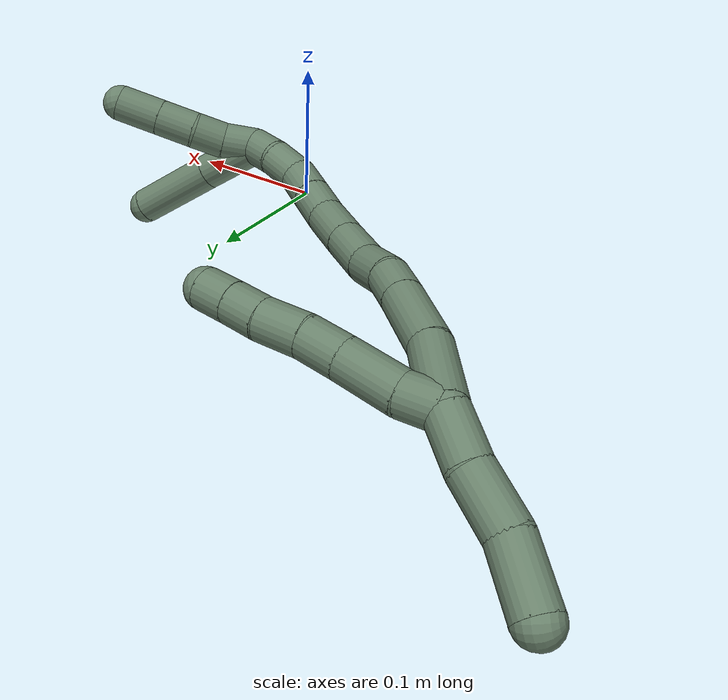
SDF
<sdf version="1.7">
 <world name="default">
  <model name="17">
   <static>0</static>
   <link name="17">
    <collision name="collision-cylinder-e_1_2_8">
     <pose>0.003162 -0.003744 0.01007 0.355961 0.286237 0.051832</pose>
     <geometry><cylinder><radius>0.0125</radius><length>0.022398</length></cylinder></geometry>
     <surface>
      <friction><ode><mu>1.16</mu><mu2>1.16</mu2><slip1>0</slip1><slip2>0</slip2></ode></friction>
      <contact><ode><kp>1e+06</kp><kd>1</kd><max_vel>0</max_vel><min_depth>0.001</min_depth></ode></contact>
     </surface>
    </collision>
    <visual name="visual-cylinder-e_1_2_8">
     <pose>0.003162 -0.003744 0.01007 0.355961 0.286237 0.051832</pose>
     <geometry><cylinder><radius>0.0125</radius><length>0.022398</length></cylinder></geometry>
     <material><ambient>0.415686 0.509804 0.423529 1</ambient></material>
    </visual>
    <collision name="collision-cylinder-e_2_8_9">
     <pose>0.012915 -0.015889 0.034417 0.531871 0.378681 0.104304</pose>
     <geometry><cylinder><radius>0.0125</radius><length>0.035657</length></cylinder></geometry>
     <surface>
      <friction><ode><mu>1.16</mu><mu2>1.16</mu2><slip1>0</slip1><slip2>0</slip2></ode></friction>
      <contact><ode><kp>1e+06</kp><kd>1</kd><max_vel>0</max_vel><min_depth>0.001</min_depth></ode></contact>
     </surface>
    </collision>
    <visual name="visual-cylinder-e_2_8_9">
     <pose>0.012915 -0.015889 0.034417 0.531871 0.378681 0.104304</pose>
     <geometry><cylinder><radius>0.0125</radius><length>0.035657</length></cylinder></geometry>
     <material><ambient>0.415686 0.509804 0.423529 1</ambient></material>
    </visual>
    <collision name="collision-cylinder-e_3_9_10">
     <pose>0.023349 -0.030122 0.05838 0.541967 0.327662 0.091789</pose>
     <geometry><cylinder><radius>0.0125</radius><length>0.023883</length></cylinder></geometry>
     <surface>
      <friction><ode><mu>1.16</mu><mu2>1.16</mu2><slip1>0</slip1><slip2>0</slip2></ode></friction>
      <contact><ode><kp>1e+06</kp><kd>1</kd><max_vel>0</max_vel><min_depth>0.001</min_depth></ode></contact>
     </surface>
    </collision>
    <visual name="visual-cylinder-e_3_9_10">
     <pose>0.023349 -0.030122 0.05838 0.541967 0.327662 0.091789</pose>
     <geometry><cylinder><radius>0.0125</radius><length>0.023883</length></cylinder></geometry>
     <material><ambient>0.415686 0.509804 0.423529 1</ambient></material>
    </visual>
    <collision name="collision-cylinder-e_4_10_11">
     <pose>0.030823 -0.041219 0.079731 0.423927 0.276438 0.059852</pose>
     <geometry><cylinder><radius>0.0125</radius><length>0.026605</length></cylinder></geometry>
     <surface>
      <friction><ode><mu>1.16</mu><mu2>1.16</mu2><slip1>0</slip1><slip2>0</slip2></ode></friction>
      <contact><ode><kp>1e+06</kp><kd>1</kd><max_vel>0</max_vel><min_depth>0.001</min_depth></ode></contact>
     </surface>
    </collision>
    <visual name="visual-cylinder-e_4_10_11">
     <pose>0.030823 -0.041219 0.079731 0.423927 0.276438 0.059852</pose>
     <geometry><cylinder><radius>0.0125</radius><length>0.026605</length></cylinder></geometry>
     <material><ambient>0.415686 0.509804 0.423529 1</ambient></material>
    </visual>
    <collision name="collision-cylinder-e_5_11_12">
     <pose>0.03829 -0.051022 0.100086 0.481366 0.372932 0.092542</pose>
     <geometry><cylinder><radius>0.0125</radius><length>0.021056</length></cylinder></geometry>
     <surface>
      <friction><ode><mu>1.16</mu><mu2>1.16</mu2><slip1>0</slip1><slip2>0</slip2></ode></friction>
      <contact><ode><kp>1e+06</kp><kd>1</kd><max_vel>0</max_vel><min_depth>0.001</min_depth></ode></contact>
     </surface>
    </collision>
    <visual name="visual-cylinder-e_5_11_12">
     <pose>0.03829 -0.051022 0.100086 0.481366 0.372932 0.092542</pose>
     <geometry><cylinder><radius>0.0125</radius><length>0.021056</length></cylinder></geometry>
     <material><ambient>0.415686 0.509804 0.423529 1</ambient></material>
    </visual>
    <collision name="collision-cylinder-e_6_12_6">
     <pose>0.04586 -0.059686 0.117325 0.449459 0.37478 0.086634</pose>
     <geometry><cylinder><radius>0.0125</radius><length>0.0204</length></cylinder></geometry>
     <surface>
      <friction><ode><mu>1.16</mu><mu2>1.16</mu2><slip1>0</slip1><slip2>0</slip2></ode></friction>
      <contact><ode><kp>1e+06</kp><kd>1</kd><max_vel>0</max_vel><min_depth>0.001</min_depth></ode></contact>
     </surface>
    </collision>
    <visual name="visual-cylinder-e_6_12_6">
     <pose>0.04586 -0.059686 0.117325 0.449459 0.37478 0.086634</pose>
     <geometry><cylinder><radius>0.0125</radius><length>0.0204</length></cylinder></geometry>
     <material><ambient>0.415686 0.509804 0.423529 1</ambient></material>
    </visual>
    <collision name="collision-cylinder-e_1_2_13">
     <pose>-0.010462 0.009711 -0.004809 -2.03064 -0.7678 1.15391</pose>
     <geometry><cylinder><radius>0.0125</radius><length>0.030125</length></cylinder></geometry>
     <surface>
      <friction><ode><mu>1.16</mu><mu2>1.16</mu2><slip1>0</slip1><slip2>0</slip2></ode></friction>
      <contact><ode><kp>1e+06</kp><kd>1</kd><max_vel>0</max_vel><min_depth>0.001</min_depth></ode></contact>
     </surface>
    </collision>
    <visual name="visual-cylinder-e_1_2_13">
     <pose>-0.010462 0.009711 -0.004809 -2.03064 -0.7678 1.15391</pose>
     <geometry><cylinder><radius>0.0125</radius><length>0.030125</length></cylinder></geometry>
     <material><ambient>0.415686 0.509804 0.423529 1</ambient></material>
    </visual>
    <collision name="collision-cylinder-e_2_13_14">
     <pose>-0.030864 0.030684 -0.016919 -2.14593 -0.637488 1.09137</pose>
     <geometry><cylinder><radius>0.0125</radius><length>0.033403</length></cylinder></geometry>
     <surface>
      <friction><ode><mu>1.16</mu><mu2>1.16</mu2><slip1>0</slip1><slip2>0</slip2></ode></friction>
      <contact><ode><kp>1e+06</kp><kd>1</kd><max_vel>0</max_vel><min_depth>0.001</min_depth></ode></contact>
     </surface>
    </collision>
    <visual name="visual-cylinder-e_2_13_14">
     <pose>-0.030864 0.030684 -0.016919 -2.14593 -0.637488 1.09137</pose>
     <geometry><cylinder><radius>0.0125</radius><length>0.033403</length></cylinder></geometry>
     <material><ambient>0.415686 0.509804 0.423529 1</ambient></material>
    </visual>
    <collision name="collision-cylinder-e_3_14_5">
     <pose>-0.054253 0.0534 -0.028746 -1.94711 -0.829348 1.1489</pose>
     <geometry><cylinder><radius>0.0125</radius><length>0.036472</length></cylinder></geometry>
     <surface>
      <friction><ode><mu>1.16</mu><mu2>1.16</mu2><slip1>0</slip1><slip2>0</slip2></ode></friction>
      <contact><ode><kp>1e+06</kp><kd>1</kd><max_vel>0</max_vel><min_depth>0.001</min_depth></ode></contact>
     </surface>
    </collision>
    <visual name="visual-cylinder-e_3_14_5">
     <pose>-0.054253 0.0534 -0.028746 -1.94711 -0.829348 1.1489</pose>
     <geometry><cylinder><radius>0.0125</radius><length>0.036472</length></cylinder></geometry>
     <material><ambient>0.415686 0.509804 0.423529 1</ambient></material>
    </visual>
    <collision name="collision-cylinder-e_1_2_15">
     <pose>0.021516 -0.006187 0.005906 0.8086 1.19243 0.565165</pose>
     <geometry><cylinder><radius>0.0125</radius><length>0.046308</length></cylinder></geometry>
     <surface>
      <friction><ode><mu>1.16</mu><mu2>1.16</mu2><slip1>0</slip1><slip2>0</slip2></ode></friction>
      <contact><ode><kp>1e+06</kp><kd>1</kd><max_vel>0</max_vel><min_depth>0.001</min_depth></ode></contact>
     </surface>
    </collision>
    <visual name="visual-cylinder-e_1_2_15">
     <pose>0.021516 -0.006187 0.005906 0.8086 1.19243 0.565165</pose>
     <geometry><cylinder><radius>0.0125</radius><length>0.046308</length></cylinder></geometry>
     <material><ambient>0.415686 0.509804 0.423529 1</ambient></material>
    </visual>
    <collision name="collision-cylinder-e_2_15_16">
     <pose>0.061865 -0.01868 0.021445 0.579667 1.02206 0.331379</pose>
     <geometry><cylinder><radius>0.0125</radius><length>0.044145</length></cylinder></geometry>
     <surface>
      <friction><ode><mu>1.16</mu><mu2>1.16</mu2><slip1>0</slip1><slip2>0</slip2></ode></friction>
      <contact><ode><kp>1e+06</kp><kd>1</kd><max_vel>0</max_vel><min_depth>0.001</min_depth></ode></contact>
     </surface>
    </collision>
    <visual name="visual-cylinder-e_2_15_16">
     <pose>0.061865 -0.01868 0.021445 0.579667 1.02206 0.331379</pose>
     <geometry><cylinder><radius>0.0125</radius><length>0.044145</length></cylinder></geometry>
     <material><ambient>0.415686 0.509804 0.423529 1</ambient></material>
    </visual>
    <collision name="collision-cylinder-e_3_16_17">
     <pose>0.09034 -0.028208 0.036407 0.543713 0.997359 0.301316</pose>
     <geometry><cylinder><radius>0.0125</radius><length>0.022958</length></cylinder></geometry>
     <surface>
      <friction><ode><mu>1.16</mu><mu2>1.16</mu2><slip1>0</slip1><slip2>0</slip2></ode></friction>
      <contact><ode><kp>1e+06</kp><kd>1</kd><max_vel>0</max_vel><min_depth>0.001</min_depth></ode></contact>
     </surface>
    </collision>
    <visual name="visual-cylinder-e_3_16_17">
     <pose>0.09034 -0.028208 0.036407 0.543713 0.997359 0.301316</pose>
     <geometry><cylinder><radius>0.0125</radius><length>0.022958</length></cylinder></geometry>
     <material><ambient>0.415686 0.509804 0.423529 1</ambient></material>
    </visual>
    <collision name="collision-cylinder-e_4_17_18">
     <pose>0.110642 -0.032581 0.050569 0.129655 0.874656 0.060683</pose>
     <geometry><cylinder><radius>0.0125</radius><length>0.027782</length></cylinder></geometry>
     <surface>
      <friction><ode><mu>1.16</mu><mu2>1.16</mu2><slip1>0</slip1><slip2>0</slip2></ode></friction>
      <contact><ode><kp>1e+06</kp><kd>1</kd><max_vel>0</max_vel><min_depth>0.001</min_depth></ode></contact>
     </surface>
    </collision>
    <visual name="visual-cylinder-e_4_17_18">
     <pose>0.110642 -0.032581 0.050569 0.129655 0.874656 0.060683</pose>
     <geometry><cylinder><radius>0.0125</radius><length>0.027782</length></cylinder></geometry>
     <material><ambient>0.415686 0.509804 0.423529 1</ambient></material>
    </visual>
    <collision name="collision-cylinder-e_5_18_19">
     <pose>0.133431 -0.0382 0.06802 0.478212 0.895908 0.233216</pose>
     <geometry><cylinder><radius>0.0125</radius><length>0.031072</length></cylinder></geometry>
     <surface>
      <friction><ode><mu>1.16</mu><mu2>1.16</mu2><slip1>0</slip1><slip2>0</slip2></ode></friction>
      <contact><ode><kp>1e+06</kp><kd>1</kd><max_vel>0</max_vel><min_depth>0.001</min_depth></ode></contact>
     </surface>
    </collision>
    <visual name="visual-cylinder-e_5_18_19">
     <pose>0.133431 -0.0382 0.06802 0.478212 0.895908 0.233216</pose>
     <geometry><cylinder><radius>0.0125</radius><length>0.031072</length></cylinder></geometry>
     <material><ambient>0.415686 0.509804 0.423529 1</ambient></material>
    </visual>
    <collision name="collision-cylinder-e_6_19_20">
     <pose>0.158259 -0.047651 0.085432 0.515646 0.898479 0.252904</pose>
     <geometry><cylinder><radius>0.0125</radius><length>0.03246</length></cylinder></geometry>
     <surface>
      <friction><ode><mu>1.16</mu><mu2>1.16</mu2><slip1>0</slip1><slip2>0</slip2></ode></friction>
      <contact><ode><kp>1e+06</kp><kd>1</kd><max_vel>0</max_vel><min_depth>0.001</min_depth></ode></contact>
     </surface>
    </collision>
    <visual name="visual-cylinder-e_6_19_20">
     <pose>0.158259 -0.047651 0.085432 0.515646 0.898479 0.252904</pose>
     <geometry><cylinder><radius>0.0125</radius><length>0.03246</length></cylinder></geometry>
     <material><ambient>0.415686 0.509804 0.423529 1</ambient></material>
    </visual>
    <collision name="collision-cylinder-e_7_20_21">
     <pose>0.179433 -0.058207 0.100141 0.755487 0.806521 0.335401</pose>
     <geometry><cylinder><radius>0.0125</radius><length>0.023484</length></cylinder></geometry>
     <surface>
      <friction><ode><mu>1.16</mu><mu2>1.16</mu2><slip1>0</slip1><slip2>0</slip2></ode></friction>
      <contact><ode><kp>1e+06</kp><kd>1</kd><max_vel>0</max_vel><min_depth>0.001</min_depth></ode></contact>
     </surface>
    </collision>
    <visual name="visual-cylinder-e_7_20_21">
     <pose>0.179433 -0.058207 0.100141 0.755487 0.806521 0.335401</pose>
     <geometry><cylinder><radius>0.0125</radius><length>0.023484</length></cylinder></geometry>
     <material><ambient>0.415686 0.509804 0.423529 1</ambient></material>
    </visual>
    <collision name="collision-cylinder-e_8_21_22">
     <pose>0.196701 -0.069224 0.112145 0.729749 0.822046 0.329943</pose>
     <geometry><cylinder><radius>0.0125</radius><length>0.024002</length></cylinder></geometry>
     <surface>
      <friction><ode><mu>1.16</mu><mu2>1.16</mu2><slip1>0</slip1><slip2>0</slip2></ode></friction>
      <contact><ode><kp>1e+06</kp><kd>1</kd><max_vel>0</max_vel><min_depth>0.001</min_depth></ode></contact>
     </surface>
    </collision>
    <visual name="visual-cylinder-e_8_21_22">
     <pose>0.196701 -0.069224 0.112145 0.729749 0.822046 0.329943</pose>
     <geometry><cylinder><radius>0.0125</radius><length>0.024002</length></cylinder></geometry>
     <material><ambient>0.415686 0.509804 0.423529 1</ambient></material>
    </visual>
    <collision name="collision-cylinder-e_9_22_23">
     <pose>0.211006 -0.081403 0.126421 0.688189 0.479675 0.174819</pose>
     <geometry><cylinder><radius>0.0125</radius><length>0.023897</length></cylinder></geometry>
     <surface>
      <friction><ode><mu>1.16</mu><mu2>1.16</mu2><slip1>0</slip1><slip2>0</slip2></ode></friction>
      <contact><ode><kp>1e+06</kp><kd>1</kd><max_vel>0</max_vel><min_depth>0.001</min_depth></ode></contact>
     </surface>
    </collision>
    <visual name="visual-cylinder-e_9_22_23">
     <pose>0.211006 -0.081403 0.126421 0.688189 0.479675 0.174819</pose>
     <geometry><cylinder><radius>0.0125</radius><length>0.023897</length></cylinder></geometry>
     <material><ambient>0.415686 0.509804 0.423529 1</ambient></material>
    </visual>
    <collision name="collision-cylinder-e_10_23_1">
     <pose>0.223295 -0.092559 0.143397 0.46631 0.602981 0.147427</pose>
     <geometry><cylinder><radius>0.0125</radius><length>0.023891</length></cylinder></geometry>
     <surface>
      <friction><ode><mu>1.16</mu><mu2>1.16</mu2><slip1>0</slip1><slip2>0</slip2></ode></friction>
      <contact><ode><kp>1e+06</kp><kd>1</kd><max_vel>0</max_vel><min_depth>0.001</min_depth></ode></contact>
     </surface>
    </collision>
    <visual name="visual-cylinder-e_10_23_1">
     <pose>0.223295 -0.092559 0.143397 0.46631 0.602981 0.147427</pose>
     <geometry><cylinder><radius>0.0125</radius><length>0.023891</length></cylinder></geometry>
     <material><ambient>0.415686 0.509804 0.423529 1</ambient></material>
    </visual>
    <collision name="collision-cylinder-e_1_1_24">
     <pose>0.227724 -0.102111 0.161916 0.485042 -0.210062 -0.052148</pose>
     <geometry><cylinder><radius>0.0125</radius><length>0.022491</length></cylinder></geometry>
     <surface>
      <friction><ode><mu>1.16</mu><mu2>1.16</mu2><slip1>0</slip1><slip2>0</slip2></ode></friction>
      <contact><ode><kp>1e+06</kp><kd>1</kd><max_vel>0</max_vel><min_depth>0.001</min_depth></ode></contact>
     </surface>
    </collision>
    <visual name="visual-cylinder-e_1_1_24">
     <pose>0.227724 -0.102111 0.161916 0.485042 -0.210062 -0.052148</pose>
     <geometry><cylinder><radius>0.0125</radius><length>0.022491</length></cylinder></geometry>
     <material><ambient>0.415686 0.509804 0.423529 1</ambient></material>
    </visual>
    <collision name="collision-cylinder-e_2_24_25">
     <pose>0.222315 -0.114026 0.179484 0.713661 -0.287369 -0.107767</pose>
     <geometry><cylinder><radius>0.0125</radius><length>0.021625</length></cylinder></geometry>
     <surface>
      <friction><ode><mu>1.16</mu><mu2>1.16</mu2><slip1>0</slip1><slip2>0</slip2></ode></friction>
      <contact><ode><kp>1e+06</kp><kd>1</kd><max_vel>0</max_vel><min_depth>0.001</min_depth></ode></contact>
     </surface>
    </collision>
    <visual name="visual-cylinder-e_2_24_25">
     <pose>0.222315 -0.114026 0.179484 0.713661 -0.287369 -0.107767</pose>
     <geometry><cylinder><radius>0.0125</radius><length>0.021625</length></cylinder></geometry>
     <material><ambient>0.415686 0.509804 0.423529 1</ambient></material>
    </visual>
    <collision name="collision-cylinder-e_3_25_26">
     <pose>0.217779 -0.128549 0.197609 0.644723 -0.113841 -0.038061</pose>
     <geometry><cylinder><radius>0.0125</radius><length>0.025908</length></cylinder></geometry>
     <surface>
      <friction><ode><mu>1.16</mu><mu2>1.16</mu2><slip1>0</slip1><slip2>0</slip2></ode></friction>
      <contact><ode><kp>1e+06</kp><kd>1</kd><max_vel>0</max_vel><min_depth>0.001</min_depth></ode></contact>
     </surface>
    </collision>
    <visual name="visual-cylinder-e_3_25_26">
     <pose>0.217779 -0.128549 0.197609 0.644723 -0.113841 -0.038061</pose>
     <geometry><cylinder><radius>0.0125</radius><length>0.025908</length></cylinder></geometry>
     <material><ambient>0.415686 0.509804 0.423529 1</ambient></material>
    </visual>
    <collision name="collision-cylinder-e_4_26_4">
     <pose>0.214612 -0.145228 0.219802 0.644294 -0.113357 -0.037872</pose>
     <geometry><cylinder><radius>0.0125</radius><length>0.029976</length></cylinder></geometry>
     <surface>
      <friction><ode><mu>1.16</mu><mu2>1.16</mu2><slip1>0</slip1><slip2>0</slip2></ode></friction>
      <contact><ode><kp>1e+06</kp><kd>1</kd><max_vel>0</max_vel><min_depth>0.001</min_depth></ode></contact>
     </surface>
    </collision>
    <visual name="visual-cylinder-e_4_26_4">
     <pose>0.214612 -0.145228 0.219802 0.644294 -0.113357 -0.037872</pose>
     <geometry><cylinder><radius>0.0125</radius><length>0.029976</length></cylinder></geometry>
     <material><ambient>0.415686 0.509804 0.423529 1</ambient></material>
    </visual>
    <collision name="collision-cylinder-e_1_1_27">
     <pose>0.228948 -0.092595 0.172526 -0.212451 -0.053845 0.005743</pose>
     <geometry><cylinder><radius>0.0125</radius><length>0.041677</length></cylinder></geometry>
     <surface>
      <friction><ode><mu>1.16</mu><mu2>1.16</mu2><slip1>0</slip1><slip2>0</slip2></ode></friction>
      <contact><ode><kp>1e+06</kp><kd>1</kd><max_vel>0</max_vel><min_depth>0.001</min_depth></ode></contact>
     </surface>
    </collision>
    <visual name="visual-cylinder-e_1_1_27">
     <pose>0.228948 -0.092595 0.172526 -0.212451 -0.053845 0.005743</pose>
     <geometry><cylinder><radius>0.0125</radius><length>0.041677</length></cylinder></geometry>
     <material><ambient>0.415686 0.509804 0.423529 1</ambient></material>
    </visual>
    <collision name="collision-cylinder-e_2_27_3">
     <pose>0.226169 -0.081789 0.221265 -0.222292 -0.056849 0.006346</pose>
     <geometry><cylinder><radius>0.0125</radius><length>0.058323</length></cylinder></geometry>
     <surface>
      <friction><ode><mu>1.16</mu><mu2>1.16</mu2><slip1>0</slip1><slip2>0</slip2></ode></friction>
      <contact><ode><kp>1e+06</kp><kd>1</kd><max_vel>0</max_vel><min_depth>0.001</min_depth></ode></contact>
     </surface>
    </collision>
    <visual name="visual-cylinder-e_2_27_3">
     <pose>0.226169 -0.081789 0.221265 -0.222292 -0.056849 0.006346</pose>
     <geometry><cylinder><radius>0.0125</radius><length>0.058323</length></cylinder></geometry>
     <material><ambient>0.415686 0.509804 0.423529 1</ambient></material>
    </visual>
    <collision name="collision-sphere-3">
     <pose>0.224512 -0.07537 0.249663 0 -0 0</pose>
     <geometry><sphere><radius>0.0125</radius></sphere></geometry>
     <surface>
      <friction><ode><mu>1.16</mu><mu2>1.16</mu2><slip1>0</slip1><slip2>0</slip2></ode></friction>
      <contact><ode><kp>1e+06</kp><kd>1</kd><max_vel>0</max_vel><min_depth>0.001</min_depth></ode></contact>
     </surface>
    </collision>
    <visual name="visual-sphere-3">
     <pose>0.224512 -0.07537 0.249663 0 -0 0</pose>
     <geometry><sphere><radius>0.0125</radius></sphere></geometry>
     <material><ambient>0.415686 0.509804 0.423529 1</ambient></material>
    </visual>
    <collision name="collision-sphere-27">
     <pose>0.227826 -0.088208 0.192866 0 -0 0</pose>
     <geometry><sphere><radius>0.0125</radius></sphere></geometry>
     <surface>
      <friction><ode><mu>1.16</mu><mu2>1.16</mu2><slip1>0</slip1><slip2>0</slip2></ode></friction>
      <contact><ode><kp>1e+06</kp><kd>1</kd><max_vel>0</max_vel><min_depth>0.001</min_depth></ode></contact>
     </surface>
    </collision>
    <visual name="visual-sphere-27">
     <pose>0.227826 -0.088208 0.192866 0 -0 0</pose>
     <geometry><sphere><radius>0.0125</radius></sphere></geometry>
     <material><ambient>0.415686 0.509804 0.423529 1</ambient></material>
    </visual>
    <collision name="collision-sphere-4">
     <pose>0.212916 -0.154172 0.231709 0 -0 0</pose>
     <geometry><sphere><radius>0.0125</radius></sphere></geometry>
     <surface>
      <friction><ode><mu>1.16</mu><mu2>1.16</mu2><slip1>0</slip1><slip2>0</slip2></ode></friction>
      <contact><ode><kp>1e+06</kp><kd>1</kd><max_vel>0</max_vel><min_depth>0.001</min_depth></ode></contact>
     </surface>
    </collision>
    <visual name="visual-sphere-4">
     <pose>0.212916 -0.154172 0.231709 0 -0 0</pose>
     <geometry><sphere><radius>0.0125</radius></sphere></geometry>
     <material><ambient>0.415686 0.509804 0.423529 1</ambient></material>
    </visual>
    <collision name="collision-sphere-26">
     <pose>0.216307 -0.136283 0.207896 0 -0 0</pose>
     <geometry><sphere><radius>0.0125</radius></sphere></geometry>
     <surface>
      <friction><ode><mu>1.16</mu><mu2>1.16</mu2><slip1>0</slip1><slip2>0</slip2></ode></friction>
      <contact><ode><kp>1e+06</kp><kd>1</kd><max_vel>0</max_vel><min_depth>0.001</min_depth></ode></contact>
     </surface>
    </collision>
    <visual name="visual-sphere-26">
     <pose>0.216307 -0.136283 0.207896 0 -0 0</pose>
     <geometry><sphere><radius>0.0125</radius></sphere></geometry>
     <material><ambient>0.415686 0.509804 0.423529 1</ambient></material>
    </visual>
    <collision name="collision-sphere-25">
     <pose>0.21925 -0.120814 0.187323 0 -0 0</pose>
     <geometry><sphere><radius>0.0125</radius></sphere></geometry>
     <surface>
      <friction><ode><mu>1.16</mu><mu2>1.16</mu2><slip1>0</slip1><slip2>0</slip2></ode></friction>
      <contact><ode><kp>1e+06</kp><kd>1</kd><max_vel>0</max_vel><min_depth>0.001</min_depth></ode></contact>
     </surface>
    </collision>
    <visual name="visual-sphere-25">
     <pose>0.21925 -0.120814 0.187323 0 -0 0</pose>
     <geometry><sphere><radius>0.0125</radius></sphere></geometry>
     <material><ambient>0.415686 0.509804 0.423529 1</ambient></material>
    </visual>
    <collision name="collision-sphere-24">
     <pose>0.225379 -0.107239 0.171645 0 -0 0</pose>
     <geometry><sphere><radius>0.0125</radius></sphere></geometry>
     <surface>
      <friction><ode><mu>1.16</mu><mu2>1.16</mu2><slip1>0</slip1><slip2>0</slip2></ode></friction>
      <contact><ode><kp>1e+06</kp><kd>1</kd><max_vel>0</max_vel><min_depth>0.001</min_depth></ode></contact>
     </surface>
    </collision>
    <visual name="visual-sphere-24">
     <pose>0.225379 -0.107239 0.171645 0 -0 0</pose>
     <geometry><sphere><radius>0.0125</radius></sphere></geometry>
     <material><ambient>0.415686 0.509804 0.423529 1</ambient></material>
    </visual>
    <collision name="collision-sphere-1">
     <pose>0.230069 -0.096983 0.152186 0 -0 0</pose>
     <geometry><sphere><radius>0.0125</radius></sphere></geometry>
     <surface>
      <friction><ode><mu>1.16</mu><mu2>1.16</mu2><slip1>0</slip1><slip2>0</slip2></ode></friction>
      <contact><ode><kp>1e+06</kp><kd>1</kd><max_vel>0</max_vel><min_depth>0.001</min_depth></ode></contact>
     </surface>
    </collision>
    <visual name="visual-sphere-1">
     <pose>0.230069 -0.096983 0.152186 0 -0 0</pose>
     <geometry><sphere><radius>0.0125</radius></sphere></geometry>
     <material><ambient>0.415686 0.509804 0.423529 1</ambient></material>
    </visual>
    <collision name="collision-sphere-23">
     <pose>0.216521 -0.088136 0.134609 0 -0 0</pose>
     <geometry><sphere><radius>0.0125</radius></sphere></geometry>
     <surface>
      <friction><ode><mu>1.16</mu><mu2>1.16</mu2><slip1>0</slip1><slip2>0</slip2></ode></friction>
      <contact><ode><kp>1e+06</kp><kd>1</kd><max_vel>0</max_vel><min_depth>0.001</min_depth></ode></contact>
     </surface>
    </collision>
    <visual name="visual-sphere-23">
     <pose>0.216521 -0.088136 0.134609 0 -0 0</pose>
     <geometry><sphere><radius>0.0125</radius></sphere></geometry>
     <material><ambient>0.415686 0.509804 0.423529 1</ambient></material>
    </visual>
    <collision name="collision-sphere-22">
     <pose>0.205492 -0.074671 0.118234 0 -0 0</pose>
     <geometry><sphere><radius>0.0125</radius></sphere></geometry>
     <surface>
      <friction><ode><mu>1.16</mu><mu2>1.16</mu2><slip1>0</slip1><slip2>0</slip2></ode></friction>
      <contact><ode><kp>1e+06</kp><kd>1</kd><max_vel>0</max_vel><min_depth>0.001</min_depth></ode></contact>
     </surface>
    </collision>
    <visual name="visual-sphere-22">
     <pose>0.205492 -0.074671 0.118234 0 -0 0</pose>
     <geometry><sphere><radius>0.0125</radius></sphere></geometry>
     <material><ambient>0.415686 0.509804 0.423529 1</ambient></material>
    </visual>
    <collision name="collision-sphere-21">
     <pose>0.18791 -0.063778 0.106056 0 -0 0</pose>
     <geometry><sphere><radius>0.0125</radius></sphere></geometry>
     <surface>
      <friction><ode><mu>1.16</mu><mu2>1.16</mu2><slip1>0</slip1><slip2>0</slip2></ode></friction>
      <contact><ode><kp>1e+06</kp><kd>1</kd><max_vel>0</max_vel><min_depth>0.001</min_depth></ode></contact>
     </surface>
    </collision>
    <visual name="visual-sphere-21">
     <pose>0.18791 -0.063778 0.106056 0 -0 0</pose>
     <geometry><sphere><radius>0.0125</radius></sphere></geometry>
     <material><ambient>0.415686 0.509804 0.423529 1</ambient></material>
    </visual>
    <collision name="collision-sphere-12">
     <pose>0.042126 -0.055561 0.108776 0 -0 0</pose>
     <geometry><sphere><radius>0.0125</radius></sphere></geometry>
     <surface>
      <friction><ode><mu>1.16</mu><mu2>1.16</mu2><slip1>0</slip1><slip2>0</slip2></ode></friction>
      <contact><ode><kp>1e+06</kp><kd>1</kd><max_vel>0</max_vel><min_depth>0.001</min_depth></ode></contact>
     </surface>
    </collision>
    <visual name="visual-sphere-12">
     <pose>0.042126 -0.055561 0.108776 0 -0 0</pose>
     <geometry><sphere><radius>0.0125</radius></sphere></geometry>
     <material><ambient>0.415686 0.509804 0.423529 1</ambient></material>
    </visual>
    <collision name="collision-sphere-11">
     <pose>0.034454 -0.046483 0.091395 0 -0 0</pose>
     <geometry><sphere><radius>0.0125</radius></sphere></geometry>
     <surface>
      <friction><ode><mu>1.16</mu><mu2>1.16</mu2><slip1>0</slip1><slip2>0</slip2></ode></friction>
      <contact><ode><kp>1e+06</kp><kd>1</kd><max_vel>0</max_vel><min_depth>0.001</min_depth></ode></contact>
     </surface>
    </collision>
    <visual name="visual-sphere-11">
     <pose>0.034454 -0.046483 0.091395 0 -0 0</pose>
     <geometry><sphere><radius>0.0125</radius></sphere></geometry>
     <material><ambient>0.415686 0.509804 0.423529 1</ambient></material>
    </visual>
    <collision name="collision-sphere-10">
     <pose>0.027193 -0.035954 0.068066 0 -0 0</pose>
     <geometry><sphere><radius>0.0125</radius></sphere></geometry>
     <surface>
      <friction><ode><mu>1.16</mu><mu2>1.16</mu2><slip1>0</slip1><slip2>0</slip2></ode></friction>
      <contact><ode><kp>1e+06</kp><kd>1</kd><max_vel>0</max_vel><min_depth>0.001</min_depth></ode></contact>
     </surface>
    </collision>
    <visual name="visual-sphere-10">
     <pose>0.027193 -0.035954 0.068066 0 -0 0</pose>
     <geometry><sphere><radius>0.0125</radius></sphere></geometry>
     <material><ambient>0.415686 0.509804 0.423529 1</ambient></material>
    </visual>
    <collision name="collision-sphere-9">
     <pose>0.019506 -0.02429 0.048694 0 -0 0</pose>
     <geometry><sphere><radius>0.0125</radius></sphere></geometry>
     <surface>
      <friction><ode><mu>1.16</mu><mu2>1.16</mu2><slip1>0</slip1><slip2>0</slip2></ode></friction>
      <contact><ode><kp>1e+06</kp><kd>1</kd><max_vel>0</max_vel><min_depth>0.001</min_depth></ode></contact>
     </surface>
    </collision>
    <visual name="visual-sphere-9">
     <pose>0.019506 -0.02429 0.048694 0 -0 0</pose>
     <geometry><sphere><radius>0.0125</radius></sphere></geometry>
     <material><ambient>0.415686 0.509804 0.423529 1</ambient></material>
    </visual>
    <collision name="collision-sphere-2">
     <geometry><sphere><radius>0.0125</radius></sphere></geometry>
     <surface>
      <friction><ode><mu>1.16</mu><mu2>1.16</mu2><slip1>0</slip1><slip2>0</slip2></ode></friction>
      <contact><ode><kp>1e+06</kp><kd>1</kd><max_vel>0</max_vel><min_depth>0.001</min_depth></ode></contact>
     </surface>
    </collision>
    <visual name="visual-sphere-2">
     <geometry><sphere><radius>0.0125</radius></sphere></geometry>
     <material><ambient>0.415686 0.509804 0.423529 1</ambient></material>
    </visual>
    <collision name="collision-sphere-19">
     <pose>0.145561 -0.042667 0.076638 0 -0 0</pose>
     <geometry><sphere><radius>0.0125</radius></sphere></geometry>
     <surface>
      <friction><ode><mu>1.16</mu><mu2>1.16</mu2><slip1>0</slip1><slip2>0</slip2></ode></friction>
      <contact><ode><kp>1e+06</kp><kd>1</kd><max_vel>0</max_vel><min_depth>0.001</min_depth></ode></contact>
     </surface>
    </collision>
    <visual name="visual-sphere-19">
     <pose>0.145561 -0.042667 0.076638 0 -0 0</pose>
     <geometry><sphere><radius>0.0125</radius></sphere></geometry>
     <material><ambient>0.415686 0.509804 0.423529 1</ambient></material>
    </visual>
    <collision name="collision-sphere-8">
     <pose>0.006324 -0.007488 0.020139 0 -0 0</pose>
     <geometry><sphere><radius>0.0125</radius></sphere></geometry>
     <surface>
      <friction><ode><mu>1.16</mu><mu2>1.16</mu2><slip1>0</slip1><slip2>0</slip2></ode></friction>
      <contact><ode><kp>1e+06</kp><kd>1</kd><max_vel>0</max_vel><min_depth>0.001</min_depth></ode></contact>
     </surface>
    </collision>
    <visual name="visual-sphere-8">
     <pose>0.006324 -0.007488 0.020139 0 -0 0</pose>
     <geometry><sphere><radius>0.0125</radius></sphere></geometry>
     <material><ambient>0.415686 0.509804 0.423529 1</ambient></material>
    </visual>
    <collision name="collision-sphere-6">
     <pose>0.049594 -0.06381 0.125875 0 -0 0</pose>
     <geometry><sphere><radius>0.0125</radius></sphere></geometry>
     <surface>
      <friction><ode><mu>1.16</mu><mu2>1.16</mu2><slip1>0</slip1><slip2>0</slip2></ode></friction>
      <contact><ode><kp>1e+06</kp><kd>1</kd><max_vel>0</max_vel><min_depth>0.001</min_depth></ode></contact>
     </surface>
    </collision>
    <visual name="visual-sphere-6">
     <pose>0.049594 -0.06381 0.125875 0 -0 0</pose>
     <geometry><sphere><radius>0.0125</radius></sphere></geometry>
     <material><ambient>0.415686 0.509804 0.423529 1</ambient></material>
    </visual>
    <collision name="collision-sphere-13">
     <pose>-0.020923 0.019422 -0.009619 0 -0 0</pose>
     <geometry><sphere><radius>0.0125</radius></sphere></geometry>
     <surface>
      <friction><ode><mu>1.16</mu><mu2>1.16</mu2><slip1>0</slip1><slip2>0</slip2></ode></friction>
      <contact><ode><kp>1e+06</kp><kd>1</kd><max_vel>0</max_vel><min_depth>0.001</min_depth></ode></contact>
     </surface>
    </collision>
    <visual name="visual-sphere-13">
     <pose>-0.020923 0.019422 -0.009619 0 -0 0</pose>
     <geometry><sphere><radius>0.0125</radius></sphere></geometry>
     <material><ambient>0.415686 0.509804 0.423529 1</ambient></material>
    </visual>
    <collision name="collision-sphere-14">
     <pose>-0.040804 0.041945 -0.02422 0 -0 0</pose>
     <geometry><sphere><radius>0.0125</radius></sphere></geometry>
     <surface>
      <friction><ode><mu>1.16</mu><mu2>1.16</mu2><slip1>0</slip1><slip2>0</slip2></ode></friction>
      <contact><ode><kp>1e+06</kp><kd>1</kd><max_vel>0</max_vel><min_depth>0.001</min_depth></ode></contact>
     </surface>
    </collision>
    <visual name="visual-sphere-14">
     <pose>-0.040804 0.041945 -0.02422 0 -0 0</pose>
     <geometry><sphere><radius>0.0125</radius></sphere></geometry>
     <material><ambient>0.415686 0.509804 0.423529 1</ambient></material>
    </visual>
    <collision name="collision-sphere-5">
     <pose>-0.067702 0.064854 -0.033272 0 -0 0</pose>
     <geometry><sphere><radius>0.0125</radius></sphere></geometry>
     <surface>
      <friction><ode><mu>1.16</mu><mu2>1.16</mu2><slip1>0</slip1><slip2>0</slip2></ode></friction>
      <contact><ode><kp>1e+06</kp><kd>1</kd><max_vel>0</max_vel><min_depth>0.001</min_depth></ode></contact>
     </surface>
    </collision>
    <visual name="visual-sphere-5">
     <pose>-0.067702 0.064854 -0.033272 0 -0 0</pose>
     <geometry><sphere><radius>0.0125</radius></sphere></geometry>
     <material><ambient>0.415686 0.509804 0.423529 1</ambient></material>
    </visual>
    <collision name="collision-sphere-15">
     <pose>0.043033 -0.012373 0.011812 0 -0 0</pose>
     <geometry><sphere><radius>0.0125</radius></sphere></geometry>
     <surface>
      <friction><ode><mu>1.16</mu><mu2>1.16</mu2><slip1>0</slip1><slip2>0</slip2></ode></friction>
      <contact><ode><kp>1e+06</kp><kd>1</kd><max_vel>0</max_vel><min_depth>0.001</min_depth></ode></contact>
     </surface>
    </collision>
    <visual name="visual-sphere-15">
     <pose>0.043033 -0.012373 0.011812 0 -0 0</pose>
     <geometry><sphere><radius>0.0125</radius></sphere></geometry>
     <material><ambient>0.415686 0.509804 0.423529 1</ambient></material>
    </visual>
    <collision name="collision-sphere-16">
     <pose>0.080697 -0.024986 0.031077 0 -0 0</pose>
     <geometry><sphere><radius>0.0125</radius></sphere></geometry>
     <surface>
      <friction><ode><mu>1.16</mu><mu2>1.16</mu2><slip1>0</slip1><slip2>0</slip2></ode></friction>
      <contact><ode><kp>1e+06</kp><kd>1</kd><max_vel>0</max_vel><min_depth>0.001</min_depth></ode></contact>
     </surface>
    </collision>
    <visual name="visual-sphere-16">
     <pose>0.080697 -0.024986 0.031077 0 -0 0</pose>
     <geometry><sphere><radius>0.0125</radius></sphere></geometry>
     <material><ambient>0.415686 0.509804 0.423529 1</ambient></material>
    </visual>
    <collision name="collision-sphere-17">
     <pose>0.099983 -0.031429 0.041736 0 -0 0</pose>
     <geometry><sphere><radius>0.0125</radius></sphere></geometry>
     <surface>
      <friction><ode><mu>1.16</mu><mu2>1.16</mu2><slip1>0</slip1><slip2>0</slip2></ode></friction>
      <contact><ode><kp>1e+06</kp><kd>1</kd><max_vel>0</max_vel><min_depth>0.001</min_depth></ode></contact>
     </surface>
    </collision>
    <visual name="visual-sphere-17">
     <pose>0.099983 -0.031429 0.041736 0 -0 0</pose>
     <geometry><sphere><radius>0.0125</radius></sphere></geometry>
     <material><ambient>0.415686 0.509804 0.423529 1</ambient></material>
    </visual>
    <collision name="collision-sphere-18">
     <pose>0.121301 -0.033733 0.059402 0 -0 0</pose>
     <geometry><sphere><radius>0.0125</radius></sphere></geometry>
     <surface>
      <friction><ode><mu>1.16</mu><mu2>1.16</mu2><slip1>0</slip1><slip2>0</slip2></ode></friction>
      <contact><ode><kp>1e+06</kp><kd>1</kd><max_vel>0</max_vel><min_depth>0.001</min_depth></ode></contact>
     </surface>
    </collision>
    <visual name="visual-sphere-18">
     <pose>0.121301 -0.033733 0.059402 0 -0 0</pose>
     <geometry><sphere><radius>0.0125</radius></sphere></geometry>
     <material><ambient>0.415686 0.509804 0.423529 1</ambient></material>
    </visual>
    <collision name="collision-sphere-20">
     <pose>0.170957 -0.052635 0.094226 0 -0 0</pose>
     <geometry><sphere><radius>0.0125</radius></sphere></geometry>
     <surface>
      <friction><ode><mu>1.16</mu><mu2>1.16</mu2><slip1>0</slip1><slip2>0</slip2></ode></friction>
      <contact><ode><kp>1e+06</kp><kd>1</kd><max_vel>0</max_vel><min_depth>0.001</min_depth></ode></contact>
     </surface>
    </collision>
    <visual name="visual-sphere-20">
     <pose>0.170957 -0.052635 0.094226 0 -0 0</pose>
     <geometry><sphere><radius>0.0125</radius></sphere></geometry>
     <material><ambient>0.415686 0.509804 0.423529 1</ambient></material>
    </visual>
    <inertial>
     <pose>0.110045 -0.046869 0.089167 0 -0 0</pose>
     <mass>0.75</mass>
     <inertia><ixx>0.000106</ixx><ixy>0</ixy><ixz>0</ixz><iyy>9.4e-05</iyy><iyz>0</iyz><izz>1.8e-05</izz></inertia>
    </inertial>
   </link>
   <pose>-0.245248 0.236088 0.05341 -1.94282 0.096884 -1.25442</pose>
  </model>
 </world>
</sdf>
